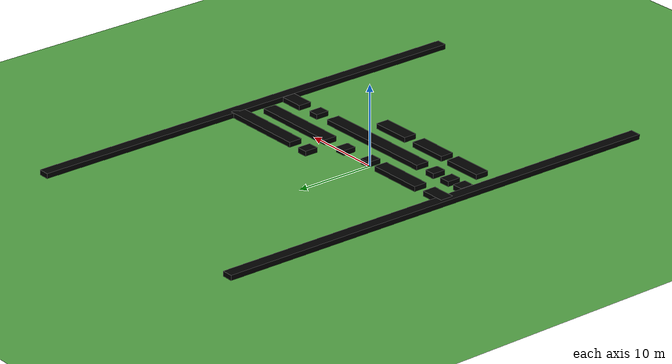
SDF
<sdf version="1.6">
 <world name="default">
  <model name="ground_plane">
   <static>1</static>
   <link name="link">
    <collision name="collision">
     <geometry><plane><normal>0 0 1</normal><size>120 120</size></plane></geometry>
     <surface><friction><ode><mu>100</mu><mu2>50</mu2></ode></friction></surface>
    </collision>
    <visual name="visual">
     <cast_shadows>0</cast_shadows>
     <geometry><plane><normal>0 0 1</normal><size>120 120</size></plane></geometry>
     <material>
      <script><uri>file://media/materials/scripts/gazebo.material</uri><name>Gazebo/Grass</name></script>
     </material>
    </visual>
   </link>
  </model>
  <model name="crop_01_8_clone_0_clone_0_clone">
   <link name="crop_01_0::link_0">
    <inertial>
     <mass>10.9148</mass>
     <inertia><ixx>13.7036</ixx><ixy>0</ixy><ixz>0</ixz><iyy>702.087</iyy><iyz>0</iyz><izz>715.772</izz></inertia>
    </inertial>
    <visual name="visual">
     <geometry><box><size>6.96579 1.68705 1</size></box></geometry>
     <material>
      <ambient>0 1 0 1</ambient>
      <diffuse>0 0 0 1</diffuse>
      <specular>0.1 0.1 0.1 1</specular>
      <emissive>0 0 0 0</emissive>
     </material>
    </visual>
    <collision name="collision">
     <geometry><box><size>6.96579 1.68705 1</size></box></geometry>
     <surface>
      <friction>
       <ode><mu>1</mu><mu2>1</mu2><fdir1>0 0 0</fdir1><slip1>0</slip1><slip2>0</slip2></ode>
       <torsional>
        <coefficient>1</coefficient>
        <patch_radius>0</patch_radius>
        <surface_radius>0</surface_radius>
        <use_patch_radius>1</use_patch_radius>
        <ode><slip>0</slip></ode>
       </torsional>
      </friction>
      <bounce><restitution_coefficient>0</restitution_coefficient><threshold>1e+06</threshold></bounce>
      <contact>
       <collide_without_contact>0</collide_without_contact>
       <collide_without_contact_bitmask>1</collide_without_contact_bitmask>
       <collide_bitmask>1</collide_bitmask>
       <ode>
        <soft_cfm>0</soft_cfm>
        <soft_erp>0.2</soft_erp>
        <kp>1e+13</kp>
        <kd>1</kd>
        <max_vel>0.01</max_vel>
        <min_depth>0</min_depth>
       </ode>
       <bullet>
        <split_impulse>1</split_impulse>
        <split_impulse_penetration_threshold>-0.01</split_impulse_penetration_threshold>
        <soft_cfm>0</soft_cfm>
        <soft_erp>0.2</soft_erp>
        <kp>1e+13</kp>
        <kd>1</kd>
       </bullet>
      </contact>
     </surface>
    </collision>
   </link>
   <static>1</static>
   <pose>-4.73584 -0.562011 0.050638 0 -0 0</pose>
  </model>
  <model name="crop_01_8_clone_0_clone_0_clone_clone_0">
   <link name="crop_01_0::link_0">
    <inertial>
     <mass>10.9148</mass>
     <inertia><ixx>13.7036</ixx><ixy>0</ixy><ixz>0</ixz><iyy>702.087</iyy><iyz>0</iyz><izz>715.772</izz></inertia>
    </inertial>
    <visual name="visual">
     <geometry><box><size>11.274 1.68705 1</size></box></geometry>
     <material>
      <ambient>0 1 0 1</ambient>
      <diffuse>0 0 0 1</diffuse>
      <specular>0.1 0.1 0.1 1</specular>
      <emissive>0 0 0 0</emissive>
     </material>
    </visual>
    <collision name="collision">
     <geometry><box><size>11.274 1.68705 1</size></box></geometry>
     <surface>
      <friction>
       <ode><mu>1</mu><mu2>1</mu2><fdir1>0 0 0</fdir1><slip1>0</slip1><slip2>0</slip2></ode>
       <torsional>
        <coefficient>1</coefficient>
        <patch_radius>0</patch_radius>
        <surface_radius>0</surface_radius>
        <use_patch_radius>1</use_patch_radius>
        <ode><slip>0</slip></ode>
       </torsional>
      </friction>
      <bounce><restitution_coefficient>0</restitution_coefficient><threshold>1e+06</threshold></bounce>
      <contact>
       <collide_without_contact>0</collide_without_contact>
       <collide_without_contact_bitmask>1</collide_without_contact_bitmask>
       <collide_bitmask>1</collide_bitmask>
       <ode>
        <soft_cfm>0</soft_cfm>
        <soft_erp>0.2</soft_erp>
        <kp>1e+13</kp>
        <kd>1</kd>
        <max_vel>0.01</max_vel>
        <min_depth>0</min_depth>
       </ode>
       <bullet>
        <split_impulse>1</split_impulse>
        <split_impulse_penetration_threshold>-0.01</split_impulse_penetration_threshold>
        <soft_cfm>0</soft_cfm>
        <soft_erp>0.2</soft_erp>
        <kp>1e+13</kp>
        <kd>1</kd>
       </bullet>
      </contact>
     </surface>
    </collision>
   </link>
   <static>1</static>
   <pose>13.4072 -0.571304 0.050638 0 -0 0</pose>
  </model>
  <model name="crop_01_8_clone_0_clone">
   <link name="crop_01_0::link_0">
    <inertial>
     <mass>10.9148</mass>
     <inertia><ixx>13.7036</ixx><ixy>0</ixy><ixz>0</ixz><iyy>702.087</iyy><iyz>0</iyz><izz>715.772</izz></inertia>
    </inertial>
    <visual name="visual">
     <geometry><box><size>16.0862 1.68705 1</size></box></geometry>
     <material>
      <ambient>0 1 0 1</ambient>
      <diffuse>0 0 0 1</diffuse>
      <specular>0.1 0.1 0.1 1</specular>
      <emissive>0 0 0 0</emissive>
     </material>
    </visual>
    <collision name="collision">
     <geometry><box><size>16.0862 1.68705 1</size></box></geometry>
     <surface>
      <friction>
       <ode><mu>1</mu><mu2>1</mu2><fdir1>0 0 0</fdir1><slip1>0</slip1><slip2>0</slip2></ode>
       <torsional>
        <coefficient>1</coefficient>
        <patch_radius>0</patch_radius>
        <surface_radius>0</surface_radius>
        <use_patch_radius>1</use_patch_radius>
        <ode><slip>0</slip></ode>
       </torsional>
      </friction>
      <bounce><restitution_coefficient>0</restitution_coefficient><threshold>1e+06</threshold></bounce>
      <contact>
       <collide_without_contact>0</collide_without_contact>
       <collide_without_contact_bitmask>1</collide_without_contact_bitmask>
       <collide_bitmask>1</collide_bitmask>
       <ode>
        <soft_cfm>0</soft_cfm>
        <soft_erp>0.2</soft_erp>
        <kp>1e+13</kp>
        <kd>1</kd>
        <max_vel>0.01</max_vel>
        <min_depth>0</min_depth>
       </ode>
       <bullet>
        <split_impulse>1</split_impulse>
        <split_impulse_penetration_threshold>-0.01</split_impulse_penetration_threshold>
        <soft_cfm>0</soft_cfm>
        <soft_erp>0.2</soft_erp>
        <kp>1e+13</kp>
        <kd>1</kd>
       </bullet>
      </contact>
     </surface>
    </collision>
   </link>
   <static>1</static>
   <pose>3.99494 -4.3494 0.050638 0 -0 0</pose>
  </model>
  <model name="crop_01_8_clone_0_clone_0_clone_1_clone_clone_clone_clone_clone_clone_clone">
   <link name="crop_01_0::link_0">
    <inertial>
     <mass>10.9148</mass>
     <inertia><ixx>13.7036</ixx><ixy>0</ixy><ixz>0</ixz><iyy>702.087</iyy><iyz>0</iyz><izz>715.772</izz></inertia>
    </inertial>
    <visual name="visual">
     <geometry><box><size>1.36286 58.3443 1</size></box></geometry>
     <material>
      <ambient>0 1 0 1</ambient>
      <diffuse>0 0 0 1</diffuse>
      <specular>0.1 0.1 0.1 1</specular>
      <emissive>0 0 0 0</emissive>
     </material>
    </visual>
    <collision name="collision">
     <geometry><box><size>1.36286 58.3443 1</size></box></geometry>
     <surface>
      <friction>
       <ode><mu>1</mu><mu2>1</mu2><fdir1>0 0 0</fdir1><slip1>0</slip1><slip2>0</slip2></ode>
       <torsional>
        <coefficient>1</coefficient>
        <patch_radius>0</patch_radius>
        <surface_radius>0</surface_radius>
        <use_patch_radius>1</use_patch_radius>
        <ode><slip>0</slip></ode>
       </torsional>
      </friction>
      <bounce><restitution_coefficient>0</restitution_coefficient><threshold>1e+06</threshold></bounce>
      <contact>
       <collide_without_contact>0</collide_without_contact>
       <collide_without_contact_bitmask>1</collide_without_contact_bitmask>
       <collide_bitmask>1</collide_bitmask>
       <ode>
        <soft_cfm>0</soft_cfm>
        <soft_erp>0.2</soft_erp>
        <kp>1e+13</kp>
        <kd>1</kd>
        <max_vel>0.01</max_vel>
        <min_depth>0</min_depth>
       </ode>
       <bullet>
        <split_impulse>1</split_impulse>
        <split_impulse_penetration_threshold>-0.01</split_impulse_penetration_threshold>
        <soft_cfm>0</soft_cfm>
        <soft_erp>0.2</soft_erp>
        <kp>1e+13</kp>
        <kd>1</kd>
       </bullet>
      </contact>
     </surface>
    </collision>
   </link>
   <static>1</static>
   <pose>20.9147 0.907043 0.050638 0 -0 0</pose>
  </model>
  <model name="crop_01_8_clone_0_clone_0_clone_1_clone_clone_clone_clone_clone_clone_clone_clone">
   <link name="crop_01_0::link_0">
    <inertial>
     <mass>10.9148</mass>
     <inertia><ixx>13.7036</ixx><ixy>0</ixy><ixz>0</ixz><iyy>702.087</iyy><iyz>0</iyz><izz>715.772</izz></inertia>
    </inertial>
    <visual name="visual">
     <geometry><box><size>1.36286 58.3442 1</size></box></geometry>
     <material>
      <ambient>0 1 0 1</ambient>
      <diffuse>0 0 0 1</diffuse>
      <specular>0.1 0.1 0.1 1</specular>
      <emissive>0 0 0 0</emissive>
     </material>
    </visual>
    <collision name="collision">
     <geometry><box><size>1.36286 58.3442 1</size></box></geometry>
     <surface>
      <friction>
       <ode><mu>1</mu><mu2>1</mu2><fdir1>0 0 0</fdir1><slip1>0</slip1><slip2>0</slip2></ode>
       <torsional>
        <coefficient>1</coefficient>
        <patch_radius>0</patch_radius>
        <surface_radius>0</surface_radius>
        <use_patch_radius>1</use_patch_radius>
        <ode><slip>0</slip></ode>
       </torsional>
      </friction>
      <bounce><restitution_coefficient>0</restitution_coefficient><threshold>1e+06</threshold></bounce>
      <contact>
       <collide_without_contact>0</collide_without_contact>
       <collide_without_contact_bitmask>1</collide_without_contact_bitmask>
       <collide_bitmask>1</collide_bitmask>
       <ode>
        <soft_cfm>0</soft_cfm>
        <soft_erp>0.2</soft_erp>
        <kp>1e+13</kp>
        <kd>1</kd>
        <max_vel>0.01</max_vel>
        <min_depth>0</min_depth>
       </ode>
       <bullet>
        <split_impulse>1</split_impulse>
        <split_impulse_penetration_threshold>-0.01</split_impulse_penetration_threshold>
        <soft_cfm>0</soft_cfm>
        <soft_erp>0.2</soft_erp>
        <kp>1e+13</kp>
        <kd>1</kd>
       </bullet>
      </contact>
     </surface>
    </collision>
   </link>
   <static>1</static>
   <pose>-12.5821 0.460847 0.050638 0 0 -0.010391</pose>
  </model>
  <model name="crop_01_8_clone_0_clone_0_clone_1_clone">
   <link name="crop_01_0::link_0">
    <inertial>
     <mass>10.9148</mass>
     <inertia><ixx>13.7036</ixx><ixy>0</ixy><ixz>0</ixz><iyy>702.087</iyy><iyz>0</iyz><izz>715.772</izz></inertia>
    </inertial>
    <visual name="visual">
     <geometry><box><size>10.9749 1.68705 1</size></box></geometry>
     <material>
      <ambient>0 1 0 1</ambient>
      <diffuse>0 0 0 1</diffuse>
      <specular>0.1 0.1 0.1 1</specular>
      <emissive>0 0 0 0</emissive>
     </material>
    </visual>
    <collision name="collision">
     <geometry><box><size>10.9749 1.68705 1</size></box></geometry>
     <surface>
      <friction>
       <ode><mu>1</mu><mu2>1</mu2><fdir1>0 0 0</fdir1><slip1>0</slip1><slip2>0</slip2></ode>
       <torsional>
        <coefficient>1</coefficient>
        <patch_radius>0</patch_radius>
        <surface_radius>0</surface_radius>
        <use_patch_radius>1</use_patch_radius>
        <ode><slip>0</slip></ode>
       </torsional>
      </friction>
      <bounce><restitution_coefficient>0</restitution_coefficient><threshold>1e+06</threshold></bounce>
      <contact>
       <collide_without_contact>0</collide_without_contact>
       <collide_without_contact_bitmask>1</collide_without_contact_bitmask>
       <collide_bitmask>1</collide_bitmask>
       <ode>
        <soft_cfm>0</soft_cfm>
        <soft_erp>0.2</soft_erp>
        <kp>1e+13</kp>
        <kd>1</kd>
        <max_vel>0.01</max_vel>
        <min_depth>0</min_depth>
       </ode>
       <bullet>
        <split_impulse>1</split_impulse>
        <split_impulse_penetration_threshold>-0.01</split_impulse_penetration_threshold>
        <soft_cfm>0</soft_cfm>
        <soft_erp>0.2</soft_erp>
        <kp>1e+13</kp>
        <kd>1</kd>
       </bullet>
      </contact>
     </surface>
    </collision>
   </link>
   <static>1</static>
   <pose>15.2564 2.92092 0.050638 0 -0 0</pose>
  </model>
  <model name="crop_01_8_clone_0_clone_0_clone_1_clone_clone_clone_clone_clone_clone_1">
   <link name="crop_01_0::link_0">
    <inertial>
     <mass>10.9148</mass>
     <inertia><ixx>13.7036</ixx><ixy>0</ixy><ixz>0</ixz><iyy>702.087</iyy><iyz>0</iyz><izz>715.772</izz></inertia>
    </inertial>
    <visual name="visual">
     <geometry><box><size>1.36286 1.68705 1</size></box></geometry>
     <material>
      <ambient>0 1 0 1</ambient>
      <diffuse>0 0 0 1</diffuse>
      <specular>0.1 0.1 0.1 1</specular>
      <emissive>0 0 0 0</emissive>
     </material>
    </visual>
    <collision name="collision">
     <geometry><box><size>1.36286 1.68705 1</size></box></geometry>
     <surface>
      <friction>
       <ode><mu>1</mu><mu2>1</mu2><fdir1>0 0 0</fdir1><slip1>0</slip1><slip2>0</slip2></ode>
       <torsional>
        <coefficient>1</coefficient>
        <patch_radius>0</patch_radius>
        <surface_radius>0</surface_radius>
        <use_patch_radius>1</use_patch_radius>
        <ode><slip>0</slip></ode>
       </torsional>
      </friction>
      <bounce><restitution_coefficient>0</restitution_coefficient><threshold>1e+06</threshold></bounce>
      <contact>
       <collide_without_contact>0</collide_without_contact>
       <collide_without_contact_bitmask>1</collide_without_contact_bitmask>
       <collide_bitmask>1</collide_bitmask>
       <ode>
        <soft_cfm>0</soft_cfm>
        <soft_erp>0.2</soft_erp>
        <kp>1e+13</kp>
        <kd>1</kd>
        <max_vel>0.01</max_vel>
        <min_depth>0</min_depth>
       </ode>
       <bullet>
        <split_impulse>1</split_impulse>
        <split_impulse_penetration_threshold>-0.01</split_impulse_penetration_threshold>
        <soft_cfm>0</soft_cfm>
        <soft_erp>0.2</soft_erp>
        <kp>1e+13</kp>
        <kd>1</kd>
       </bullet>
      </contact>
     </surface>
    </collision>
   </link>
   <static>1</static>
   <pose>7.42227 3.04067 0.050638 0 -0 0</pose>
  </model>
  <model name="crop_01_8_clone_0_clone_0_clone_1_clone_clone_clone_clone_clone_2_clone_clone">
   <link name="crop_01_0::link_0">
    <inertial>
     <mass>10.9148</mass>
     <inertia><ixx>13.7036</ixx><ixy>0</ixy><ixz>0</ixz><iyy>702.087</iyy><iyz>0</iyz><izz>715.772</izz></inertia>
    </inertial>
    <visual name="visual">
     <geometry><box><size>3.0801 1.68705 1</size></box></geometry>
     <material>
      <ambient>0 1 0 1</ambient>
      <diffuse>0 0 0 1</diffuse>
      <specular>0.1 0.1 0.1 1</specular>
      <emissive>0 0 0 0</emissive>
     </material>
    </visual>
    <collision name="collision">
     <geometry><box><size>3.0801 1.68705 1</size></box></geometry>
     <surface>
      <friction>
       <ode><mu>1</mu><mu2>1</mu2><fdir1>0 0 0</fdir1><slip1>0</slip1><slip2>0</slip2></ode>
       <torsional>
        <coefficient>1</coefficient>
        <patch_radius>0</patch_radius>
        <surface_radius>0</surface_radius>
        <use_patch_radius>1</use_patch_radius>
        <ode><slip>0</slip></ode>
       </torsional>
      </friction>
      <bounce><restitution_coefficient>0</restitution_coefficient><threshold>1e+06</threshold></bounce>
      <contact>
       <collide_without_contact>0</collide_without_contact>
       <collide_without_contact_bitmask>1</collide_without_contact_bitmask>
       <collide_bitmask>1</collide_bitmask>
       <ode>
        <soft_cfm>0</soft_cfm>
        <soft_erp>0.2</soft_erp>
        <kp>1e+13</kp>
        <kd>1</kd>
        <max_vel>0.01</max_vel>
        <min_depth>0</min_depth>
       </ode>
       <bullet>
        <split_impulse>1</split_impulse>
        <split_impulse_penetration_threshold>-0.01</split_impulse_penetration_threshold>
        <soft_cfm>0</soft_cfm>
        <soft_erp>0.2</soft_erp>
        <kp>1e+13</kp>
        <kd>1</kd>
       </bullet>
      </contact>
     </surface>
    </collision>
   </link>
   <static>1</static>
   <pose>-11.2076 -0.605161 0.050638 0 -0 0</pose>
  </model>
  <model name="crop_01_8_clone_0_clone_0_clone_1_clone_clone_clone_clone_clone_clone_1_clone">
   <link name="crop_01_0::link_0">
    <inertial>
     <mass>10.9148</mass>
     <inertia><ixx>13.7036</ixx><ixy>0</ixy><ixz>0</ixz><iyy>702.087</iyy><iyz>0</iyz><izz>715.772</izz></inertia>
    </inertial>
    <visual name="visual">
     <geometry><box><size>1.36286 1.68705 1</size></box></geometry>
     <material>
      <ambient>0 1 0 1</ambient>
      <diffuse>0 0 0 1</diffuse>
      <specular>0.1 0.1 0.1 1</specular>
      <emissive>0 0 0 0</emissive>
     </material>
    </visual>
    <collision name="collision">
     <geometry><box><size>1.36286 1.68705 1</size></box></geometry>
     <surface>
      <friction>
       <ode><mu>1</mu><mu2>1</mu2><fdir1>0 0 0</fdir1><slip1>0</slip1><slip2>0</slip2></ode>
       <torsional>
        <coefficient>1</coefficient>
        <patch_radius>0</patch_radius>
        <surface_radius>0</surface_radius>
        <use_patch_radius>1</use_patch_radius>
        <ode><slip>0</slip></ode>
       </torsional>
      </friction>
      <bounce><restitution_coefficient>0</restitution_coefficient><threshold>1e+06</threshold></bounce>
      <contact>
       <collide_without_contact>0</collide_without_contact>
       <collide_without_contact_bitmask>1</collide_without_contact_bitmask>
       <collide_bitmask>1</collide_bitmask>
       <ode>
        <soft_cfm>0</soft_cfm>
        <soft_erp>0.2</soft_erp>
        <kp>1e+13</kp>
        <kd>1</kd>
        <max_vel>0.01</max_vel>
        <min_depth>0</min_depth>
       </ode>
       <bullet>
        <split_impulse>1</split_impulse>
        <split_impulse_penetration_threshold>-0.01</split_impulse_penetration_threshold>
        <soft_cfm>0</soft_cfm>
        <soft_erp>0.2</soft_erp>
        <kp>1e+13</kp>
        <kd>1</kd>
       </bullet>
      </contact>
     </surface>
    </collision>
   </link>
   <static>1</static>
   <pose>4.83657 -0.422528 0.050638 0 -0 0</pose>
  </model>
  <model name="crop_01_8_clone_0_clone_0_clone_1_clone_clone_clone_clone_clone_clone_1_clone_clone">
   <link name="crop_01_0::link_0">
    <inertial>
     <mass>10.9148</mass>
     <inertia><ixx>13.7036</ixx><ixy>0</ixy><ixz>0</ixz><iyy>702.087</iyy><iyz>0</iyz><izz>715.772</izz></inertia>
    </inertial>
    <visual name="visual">
     <geometry><box><size>1.36286 1.68705 1</size></box></geometry>
     <material>
      <ambient>0 1 0 1</ambient>
      <diffuse>0 0 0 1</diffuse>
      <specular>0.1 0.1 0.1 1</specular>
      <emissive>0 0 0 0</emissive>
     </material>
    </visual>
    <collision name="collision">
     <geometry><box><size>1.36286 1.68705 1</size></box></geometry>
     <surface>
      <friction>
       <ode><mu>1</mu><mu2>1</mu2><fdir1>0 0 0</fdir1><slip1>0</slip1><slip2>0</slip2></ode>
       <torsional>
        <coefficient>1</coefficient>
        <patch_radius>0</patch_radius>
        <surface_radius>0</surface_radius>
        <use_patch_radius>1</use_patch_radius>
        <ode><slip>0</slip></ode>
       </torsional>
      </friction>
      <bounce><restitution_coefficient>0</restitution_coefficient><threshold>1e+06</threshold></bounce>
      <contact>
       <collide_without_contact>0</collide_without_contact>
       <collide_without_contact_bitmask>1</collide_without_contact_bitmask>
       <collide_bitmask>1</collide_bitmask>
       <ode>
        <soft_cfm>0</soft_cfm>
        <soft_erp>0.2</soft_erp>
        <kp>1e+13</kp>
        <kd>1</kd>
        <max_vel>0.01</max_vel>
        <min_depth>0</min_depth>
       </ode>
       <bullet>
        <split_impulse>1</split_impulse>
        <split_impulse_penetration_threshold>-0.01</split_impulse_penetration_threshold>
        <soft_cfm>0</soft_cfm>
        <soft_erp>0.2</soft_erp>
        <kp>1e+13</kp>
        <kd>1</kd>
       </bullet>
      </contact>
     </surface>
    </collision>
   </link>
   <static>1</static>
   <pose>0.619737 -0.595849 0.050638 0 -0 0</pose>
  </model>
  <model name="crop_01_8_clone_0_clone_0_clone_1_clone_clone_clone_clone_clone_clone_1_clone_clone_0">
   <link name="crop_01_0::link_0">
    <inertial>
     <mass>10.9148</mass>
     <inertia><ixx>13.7036</ixx><ixy>0</ixy><ixz>0</ixz><iyy>702.087</iyy><iyz>0</iyz><izz>715.772</izz></inertia>
    </inertial>
    <visual name="visual">
     <geometry><box><size>1.36286 1.68705 1</size></box></geometry>
     <material>
      <ambient>0 1 0 1</ambient>
      <diffuse>0 0 0 1</diffuse>
      <specular>0.1 0.1 0.1 1</specular>
      <emissive>0 0 0 0</emissive>
     </material>
    </visual>
    <collision name="collision">
     <geometry><box><size>1.36286 1.68705 1</size></box></geometry>
     <surface>
      <friction>
       <ode><mu>1</mu><mu2>1</mu2><fdir1>0 0 0</fdir1><slip1>0</slip1><slip2>0</slip2></ode>
       <torsional>
        <coefficient>1</coefficient>
        <patch_radius>0</patch_radius>
        <surface_radius>0</surface_radius>
        <use_patch_radius>1</use_patch_radius>
        <ode><slip>0</slip></ode>
       </torsional>
      </friction>
      <bounce><restitution_coefficient>0</restitution_coefficient><threshold>1e+06</threshold></bounce>
      <contact>
       <collide_without_contact>0</collide_without_contact>
       <collide_without_contact_bitmask>1</collide_without_contact_bitmask>
       <collide_bitmask>1</collide_bitmask>
       <ode>
        <soft_cfm>0</soft_cfm>
        <soft_erp>0.2</soft_erp>
        <kp>1e+13</kp>
        <kd>1</kd>
        <max_vel>0.01</max_vel>
        <min_depth>0</min_depth>
       </ode>
       <bullet>
        <split_impulse>1</split_impulse>
        <split_impulse_penetration_threshold>-0.01</split_impulse_penetration_threshold>
        <soft_cfm>0</soft_cfm>
        <soft_erp>0.2</soft_erp>
        <kp>1e+13</kp>
        <kd>1</kd>
       </bullet>
      </contact>
     </surface>
    </collision>
   </link>
   <static>1</static>
   <pose>14.5196 -4.27392 0.050638 0 -0 0</pose>
  </model>
  <model name="crop_01_8_clone_0_clone_0_clone_1_clone_clone_clone_clone_clone_clone_1_clone_clone_1">
   <link name="crop_01_0::link_0">
    <inertial>
     <mass>10.9148</mass>
     <inertia><ixx>13.7036</ixx><ixy>0</ixy><ixz>0</ixz><iyy>702.087</iyy><iyz>0</iyz><izz>715.772</izz></inertia>
    </inertial>
    <visual name="visual">
     <geometry><box><size>3.05604 1.68705 1</size></box></geometry>
     <material>
      <ambient>0 1 0 1</ambient>
      <diffuse>0 0 0 1</diffuse>
      <specular>0.1 0.1 0.1 1</specular>
      <emissive>0 0 0 0</emissive>
     </material>
    </visual>
    <collision name="collision">
     <geometry><box><size>3.05604 1.68705 1</size></box></geometry>
     <surface>
      <friction>
       <ode><mu>1</mu><mu2>1</mu2><fdir1>0 0 0</fdir1><slip1>0</slip1><slip2>0</slip2></ode>
       <torsional>
        <coefficient>1</coefficient>
        <patch_radius>0</patch_radius>
        <surface_radius>0</surface_radius>
        <use_patch_radius>1</use_patch_radius>
        <ode><slip>0</slip></ode>
       </torsional>
      </friction>
      <bounce><restitution_coefficient>0</restitution_coefficient><threshold>1e+06</threshold></bounce>
      <contact>
       <collide_without_contact>0</collide_without_contact>
       <collide_without_contact_bitmask>1</collide_without_contact_bitmask>
       <collide_bitmask>1</collide_bitmask>
       <ode>
        <soft_cfm>0</soft_cfm>
        <soft_erp>0.2</soft_erp>
        <kp>1e+13</kp>
        <kd>1</kd>
        <max_vel>0.01</max_vel>
        <min_depth>0</min_depth>
       </ode>
       <bullet>
        <split_impulse>1</split_impulse>
        <split_impulse_penetration_threshold>-0.01</split_impulse_penetration_threshold>
        <soft_cfm>0</soft_cfm>
        <soft_erp>0.2</soft_erp>
        <kp>1e+13</kp>
        <kd>1</kd>
       </bullet>
      </contact>
     </surface>
    </collision>
   </link>
   <static>1</static>
   <pose>18.6419 -4.2902 0.050638 0 -0 0</pose>
  </model>
  <model name="crop_01_8_clone_0_clone_0_clone_1_clone_clone_clone_clone_clone_clone_1_clone_clone_clone">
   <link name="crop_01_0::link_0">
    <inertial>
     <mass>10.9148</mass>
     <inertia><ixx>13.7036</ixx><ixy>0</ixy><ixz>0</ixz><iyy>702.087</iyy><iyz>0</iyz><izz>715.772</izz></inertia>
    </inertial>
    <visual name="visual">
     <geometry><box><size>1.36286 1.68705 1</size></box></geometry>
     <material>
      <ambient>0 1 0 1</ambient>
      <diffuse>0 0 0 1</diffuse>
      <specular>0.1 0.1 0.1 1</specular>
      <emissive>0 0 0 0</emissive>
     </material>
    </visual>
    <collision name="collision">
     <geometry><box><size>1.36286 1.68705 1</size></box></geometry>
     <surface>
      <friction>
       <ode><mu>1</mu><mu2>1</mu2><fdir1>0 0 0</fdir1><slip1>0</slip1><slip2>0</slip2></ode>
       <torsional>
        <coefficient>1</coefficient>
        <patch_radius>0</patch_radius>
        <surface_radius>0</surface_radius>
        <use_patch_radius>1</use_patch_radius>
        <ode><slip>0</slip></ode>
       </torsional>
      </friction>
      <bounce><restitution_coefficient>0</restitution_coefficient><threshold>1e+06</threshold></bounce>
      <contact>
       <collide_without_contact>0</collide_without_contact>
       <collide_without_contact_bitmask>1</collide_without_contact_bitmask>
       <collide_bitmask>1</collide_bitmask>
       <ode>
        <soft_cfm>0</soft_cfm>
        <soft_erp>0.2</soft_erp>
        <kp>1e+13</kp>
        <kd>1</kd>
        <max_vel>0.01</max_vel>
        <min_depth>0</min_depth>
       </ode>
       <bullet>
        <split_impulse>1</split_impulse>
        <split_impulse_penetration_threshold>-0.01</split_impulse_penetration_threshold>
        <soft_cfm>0</soft_cfm>
        <soft_erp>0.2</soft_erp>
        <kp>1e+13</kp>
        <kd>1</kd>
       </bullet>
      </contact>
     </surface>
    </collision>
   </link>
   <static>1</static>
   <pose>-6.27533 -4.35025 0.050638 0 -0 0</pose>
  </model>
  <model name="crop_01_8_clone_0_clone_0_clone_1_clone_clone_clone_clone_clone_clone_1_clone_clone_clone_0">
   <link name="crop_01_0::link_0">
    <inertial>
     <mass>10.9148</mass>
     <inertia><ixx>13.7036</ixx><ixy>0</ixy><ixz>0</ixz><iyy>702.087</iyy><iyz>0</iyz><izz>715.772</izz></inertia>
    </inertial>
    <visual name="visual">
     <geometry><box><size>1.36286 1.68705 1</size></box></geometry>
     <material>
      <ambient>0 1 0 1</ambient>
      <diffuse>0 0 0 1</diffuse>
      <specular>0.1 0.1 0.1 1</specular>
      <emissive>0 0 0 0</emissive>
     </material>
    </visual>
    <collision name="collision">
     <geometry><box><size>1.36286 1.68705 1</size></box></geometry>
     <surface>
      <friction>
       <ode><mu>1</mu><mu2>1</mu2><fdir1>0 0 0</fdir1><slip1>0</slip1><slip2>0</slip2></ode>
       <torsional>
        <coefficient>1</coefficient>
        <patch_radius>0</patch_radius>
        <surface_radius>0</surface_radius>
        <use_patch_radius>1</use_patch_radius>
        <ode><slip>0</slip></ode>
       </torsional>
      </friction>
      <bounce><restitution_coefficient>0</restitution_coefficient><threshold>1e+06</threshold></bounce>
      <contact>
       <collide_without_contact>0</collide_without_contact>
       <collide_without_contact_bitmask>1</collide_without_contact_bitmask>
       <collide_bitmask>1</collide_bitmask>
       <ode>
        <soft_cfm>0</soft_cfm>
        <soft_erp>0.2</soft_erp>
        <kp>1e+13</kp>
        <kd>1</kd>
        <max_vel>0.01</max_vel>
        <min_depth>0</min_depth>
       </ode>
       <bullet>
        <split_impulse>1</split_impulse>
        <split_impulse_penetration_threshold>-0.01</split_impulse_penetration_threshold>
        <soft_cfm>0</soft_cfm>
        <soft_erp>0.2</soft_erp>
        <kp>1e+13</kp>
        <kd>1</kd>
       </bullet>
      </contact>
     </surface>
    </collision>
   </link>
   <static>1</static>
   <pose>-8.91296 -4.30678 0.050638 0 -0 0</pose>
  </model>
  <model name="crop_01_8_clone_0_clone_0_clone_1_clone_clone_clone_clone_clone_clone_1_clone_clone_clone_1">
   <link name="crop_01_0::link_0">
    <inertial>
     <mass>10.9148</mass>
     <inertia><ixx>13.7036</ixx><ixy>0</ixy><ixz>0</ixz><iyy>702.087</iyy><iyz>0</iyz><izz>715.772</izz></inertia>
    </inertial>
    <visual name="visual">
     <geometry><box><size>1.36286 1.68705 1</size></box></geometry>
     <material>
      <ambient>0 1 0 1</ambient>
      <diffuse>0 0 0 1</diffuse>
      <specular>0.1 0.1 0.1 1</specular>
      <emissive>0 0 0 0</emissive>
     </material>
    </visual>
    <collision name="collision">
     <geometry><box><size>1.36286 1.68705 1</size></box></geometry>
     <surface>
      <friction>
       <ode><mu>1</mu><mu2>1</mu2><fdir1>0 0 0</fdir1><slip1>0</slip1><slip2>0</slip2></ode>
       <torsional>
        <coefficient>1</coefficient>
        <patch_radius>0</patch_radius>
        <surface_radius>0</surface_radius>
        <use_patch_radius>1</use_patch_radius>
        <ode><slip>0</slip></ode>
       </torsional>
      </friction>
      <bounce><restitution_coefficient>0</restitution_coefficient><threshold>1e+06</threshold></bounce>
      <contact>
       <collide_without_contact>0</collide_without_contact>
       <collide_without_contact_bitmask>1</collide_without_contact_bitmask>
       <collide_bitmask>1</collide_bitmask>
       <ode>
        <soft_cfm>0</soft_cfm>
        <soft_erp>0.2</soft_erp>
        <kp>1e+13</kp>
        <kd>1</kd>
        <max_vel>0.01</max_vel>
        <min_depth>0</min_depth>
       </ode>
       <bullet>
        <split_impulse>1</split_impulse>
        <split_impulse_penetration_threshold>-0.01</split_impulse_penetration_threshold>
        <soft_cfm>0</soft_cfm>
        <soft_erp>0.2</soft_erp>
        <kp>1e+13</kp>
        <kd>1</kd>
       </bullet>
      </contact>
     </surface>
    </collision>
   </link>
   <static>1</static>
   <pose>-11.1844 -4.25777 0.050638 0 -0 0</pose>
  </model>
  <model name="crop_01_8_clone_0_clone_0_clone_1_clone_clone_clone_clone_0_clone_clone_3_clone_0">
   <link name="crop_01_0::link_0">
    <inertial>
     <mass>10.9148</mass>
     <inertia><ixx>13.7036</ixx><ixy>0</ixy><ixz>0</ixz><iyy>702.087</iyy><iyz>0</iyz><izz>715.772</izz></inertia>
    </inertial>
    <visual name="visual">
     <geometry><box><size>5.03328 1.68705 1</size></box></geometry>
     <material>
      <ambient>0 1 0 1</ambient>
      <diffuse>0 0 0 1</diffuse>
      <specular>0.1 0.1 0.1 1</specular>
      <emissive>0 0 0 0</emissive>
     </material>
    </visual>
    <collision name="collision">
     <geometry><box><size>5.03328 1.68705 1</size></box></geometry>
     <surface>
      <friction>
       <ode><mu>1</mu><mu2>1</mu2><fdir1>0 0 0</fdir1><slip1>0</slip1><slip2>0</slip2></ode>
       <torsional>
        <coefficient>1</coefficient>
        <patch_radius>0</patch_radius>
        <surface_radius>0</surface_radius>
        <use_patch_radius>1</use_patch_radius>
        <ode><slip>0</slip></ode>
       </torsional>
      </friction>
      <bounce><restitution_coefficient>0</restitution_coefficient><threshold>1e+06</threshold></bounce>
      <contact>
       <collide_without_contact>0</collide_without_contact>
       <collide_without_contact_bitmask>1</collide_without_contact_bitmask>
       <collide_bitmask>1</collide_bitmask>
       <ode>
        <soft_cfm>0</soft_cfm>
        <soft_erp>0.2</soft_erp>
        <kp>1e+13</kp>
        <kd>1</kd>
        <max_vel>0.01</max_vel>
        <min_depth>0</min_depth>
       </ode>
       <bullet>
        <split_impulse>1</split_impulse>
        <split_impulse_penetration_threshold>-0.01</split_impulse_penetration_threshold>
        <soft_cfm>0</soft_cfm>
        <soft_erp>0.2</soft_erp>
        <kp>1e+13</kp>
        <kd>1</kd>
       </bullet>
      </contact>
     </surface>
    </collision>
   </link>
   <static>1</static>
   <pose>5.0887 -8.06413 0.050638 0 -0 0</pose>
  </model>
  <model name="crop_01_8_clone_0_clone_0_clone_1_clone_clone_clone_clone_0_clone_clone_3_clone_1">
   <link name="crop_01_0::link_0">
    <inertial>
     <mass>10.9148</mass>
     <inertia><ixx>13.7036</ixx><ixy>0</ixy><ixz>0</ixz><iyy>702.087</iyy><iyz>0</iyz><izz>715.772</izz></inertia>
    </inertial>
    <visual name="visual">
     <geometry><box><size>5.03328 1.68705 1</size></box></geometry>
     <material>
      <ambient>0 1 0 1</ambient>
      <diffuse>0 0 0 1</diffuse>
      <specular>0.1 0.1 0.1 1</specular>
      <emissive>0 0 0 0</emissive>
     </material>
    </visual>
    <collision name="collision">
     <geometry><box><size>5.03328 1.68705 1</size></box></geometry>
     <surface>
      <friction>
       <ode><mu>1</mu><mu2>1</mu2><fdir1>0 0 0</fdir1><slip1>0</slip1><slip2>0</slip2></ode>
       <torsional>
        <coefficient>1</coefficient>
        <patch_radius>0</patch_radius>
        <surface_radius>0</surface_radius>
        <use_patch_radius>1</use_patch_radius>
        <ode><slip>0</slip></ode>
       </torsional>
      </friction>
      <bounce><restitution_coefficient>0</restitution_coefficient><threshold>1e+06</threshold></bounce>
      <contact>
       <collide_without_contact>0</collide_without_contact>
       <collide_without_contact_bitmask>1</collide_without_contact_bitmask>
       <collide_bitmask>1</collide_bitmask>
       <ode>
        <soft_cfm>0</soft_cfm>
        <soft_erp>0.2</soft_erp>
        <kp>1e+13</kp>
        <kd>1</kd>
        <max_vel>0.01</max_vel>
        <min_depth>0</min_depth>
       </ode>
       <bullet>
        <split_impulse>1</split_impulse>
        <split_impulse_penetration_threshold>-0.01</split_impulse_penetration_threshold>
        <soft_cfm>0</soft_cfm>
        <soft_erp>0.2</soft_erp>
        <kp>1e+13</kp>
        <kd>1</kd>
       </bullet>
      </contact>
     </surface>
    </collision>
   </link>
   <static>1</static>
   <pose>-1.46699 -8.02221 0.050638 0 -0 0</pose>
  </model>
  <model name="crop_01_8_clone_0_clone_0_clone_1_clone_clone_clone_clone_0_clone_clone_3_clone_2">
   <link name="crop_01_0::link_0">
    <inertial>
     <mass>10.9148</mass>
     <inertia><ixx>13.7036</ixx><ixy>0</ixy><ixz>0</ixz><iyy>702.087</iyy><iyz>0</iyz><izz>715.772</izz></inertia>
    </inertial>
    <visual name="visual">
     <geometry><box><size>5.03328 1.68705 1</size></box></geometry>
     <material>
      <ambient>0 1 0 1</ambient>
      <diffuse>0 0 0 1</diffuse>
      <specular>0.1 0.1 0.1 1</specular>
      <emissive>0 0 0 0</emissive>
     </material>
    </visual>
    <collision name="collision">
     <geometry><box><size>5.03328 1.68705 1</size></box></geometry>
     <surface>
      <friction>
       <ode><mu>1</mu><mu2>1</mu2><fdir1>0 0 0</fdir1><slip1>0</slip1><slip2>0</slip2></ode>
       <torsional>
        <coefficient>1</coefficient>
        <patch_radius>0</patch_radius>
        <surface_radius>0</surface_radius>
        <use_patch_radius>1</use_patch_radius>
        <ode><slip>0</slip></ode>
       </torsional>
      </friction>
      <bounce><restitution_coefficient>0</restitution_coefficient><threshold>1e+06</threshold></bounce>
      <contact>
       <collide_without_contact>0</collide_without_contact>
       <collide_without_contact_bitmask>1</collide_without_contact_bitmask>
       <collide_bitmask>1</collide_bitmask>
       <ode>
        <soft_cfm>0</soft_cfm>
        <soft_erp>0.2</soft_erp>
        <kp>1e+13</kp>
        <kd>1</kd>
        <max_vel>0.01</max_vel>
        <min_depth>0</min_depth>
       </ode>
       <bullet>
        <split_impulse>1</split_impulse>
        <split_impulse_penetration_threshold>-0.01</split_impulse_penetration_threshold>
        <soft_cfm>0</soft_cfm>
        <soft_erp>0.2</soft_erp>
        <kp>1e+13</kp>
        <kd>1</kd>
       </bullet>
      </contact>
     </surface>
    </collision>
   </link>
   <static>1</static>
   <pose>-7.64778 -7.92903 0.050638 0 -0 0</pose>
  </model>
 </world>
</sdf>
